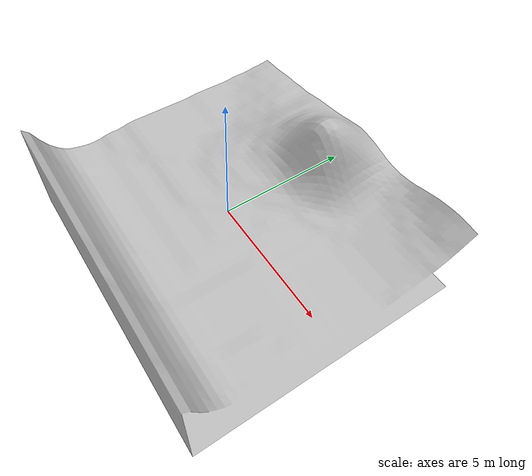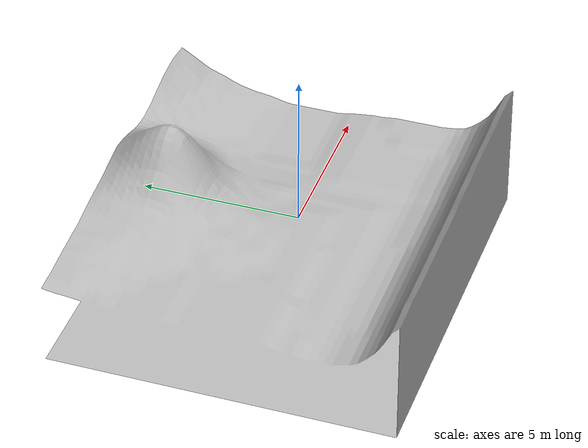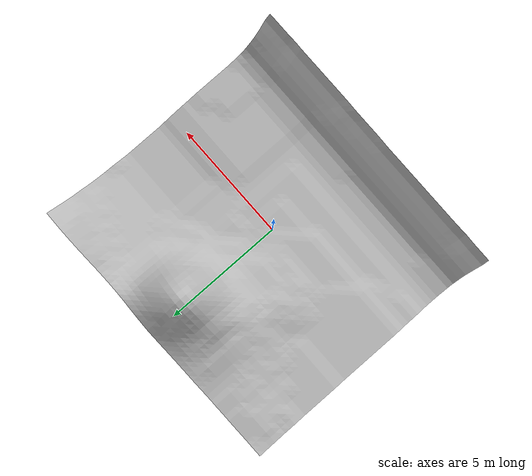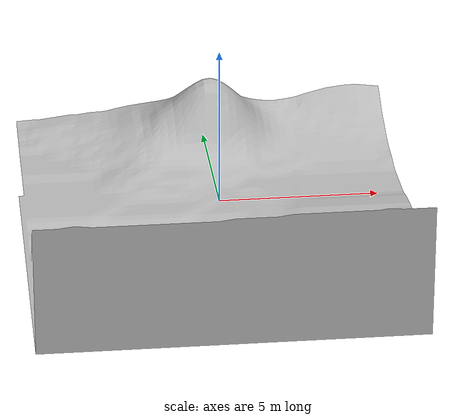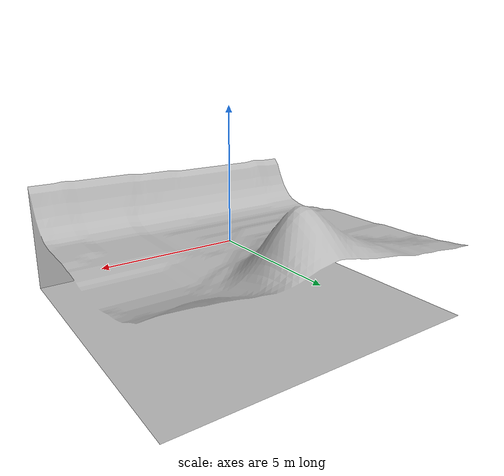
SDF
<?xml version="1.0" ?>
<sdf version="1.6">
  <world name="default">

    <!-- Cámara inicial de la GUI (enmarca el área de trabajo del robot) -->
    <gui fullscreen="0">
      <camera name="user_camera">
        <pose>1.28444 -1.29501 0.573552 0 0.275643 2.35619</pose>
        <view_controller>orbit</view_controller>
        <projection_type>perspective</projection_type>
      </camera>
    </gui>

    <!-- Gravedad marciana -->
    <gravity>0 0 -3.71</gravity>

    <!-- ================= FÍSICA (optimizada para RTF) ================= -->
    <!-- 250 Hz fija el RTF a ~1.0 y deja CPU libre. Para correr MÁS rápido que
         el tiempo real (tests por lotes) pon real_time_update_rate = 0. -->
    <physics type="ode">
      <max_step_size>0.004</max_step_size>
      <real_time_update_rate>250</real_time_update_rate>
      <real_time_factor>1</real_time_factor>
      <ode>
        <solver>
          <type>quick</type>
          <iters>100</iters>
          <sor>1.3</sor>
        </solver>
        <constraints>
          <cfm>0.0</cfm>
          <erp>0.2</erp>
          <contact_max_correcting_vel>100</contact_max_correcting_vel>
          <contact_surface_layer>0.001</contact_surface_layer>
        </constraints>
      </ode>
    </physics>

    <!-- ================= ESCENA (sin sombras) ================= -->
    <scene>
      <ambient>0.5 0.5 0.5 1</ambient>
      <background>0.86 0.60 0.45 1</background>  <!-- tono cielo marciano -->
      <shadows>0</shadows>
      <grid>0</grid>
    </scene>

    <!-- Luz direccional, sin sombras proyectadas -->
    <light name="sun" type="directional">
      <cast_shadows>0</cast_shadows>
      <pose>0 0 10 0 0 0</pose>
      <diffuse>0.9 0.85 0.8 1</diffuse>
      <specular>0.1 0.1 0.1 1</specular>
      <direction>-0.5 0.1 -0.9</direction>
    </light>

    <!-- ================= TERRENO RECORTADO (solo visual) ================= -->
    <model name="mars_terrain">
      <static>1</static>
      <link name="body">
        <visual name="visual">
          <cast_shadows>0</cast_shadows>
          <geometry>
            <mesh><uri>mars_patch.obj</uri></mesh>
          </geometry>
        </visual>
        <collision name="collision">
          <geometry>
            <mesh><uri>mars_patch.obj</uri></mesh>
          </geometry>
          <max_contacts>10</max_contacts>
          <surface>
            <friction><ode><mu>1.0</mu><mu2>1.0</mu2></ode></friction>
            <contact><ode><kp>1e6</kp><kd>1e2</kd></ode></contact>
          </surface>
        </collision>
      </link>
    </model>

    <!-- Plugin de estado: expone /get_entity_state y /set_entity_state -->
    <plugin name="gazebo_ros_state" filename="libgazebo_ros_state.so">
      <ros><namespace>/</namespace></ros>
      <update_rate>10</update_rate>
    </plugin>

    <!-- Plugin de propiedades: expone /get_light_properties y
         /set_light_properties (iluminación aleatoria del generador de dataset) -->
    <plugin name="gazebo_ros_properties" filename="libgazebo_ros_properties.so">
      <ros><namespace>/</namespace></ros>
    </plugin>

  </world>
</sdf>
